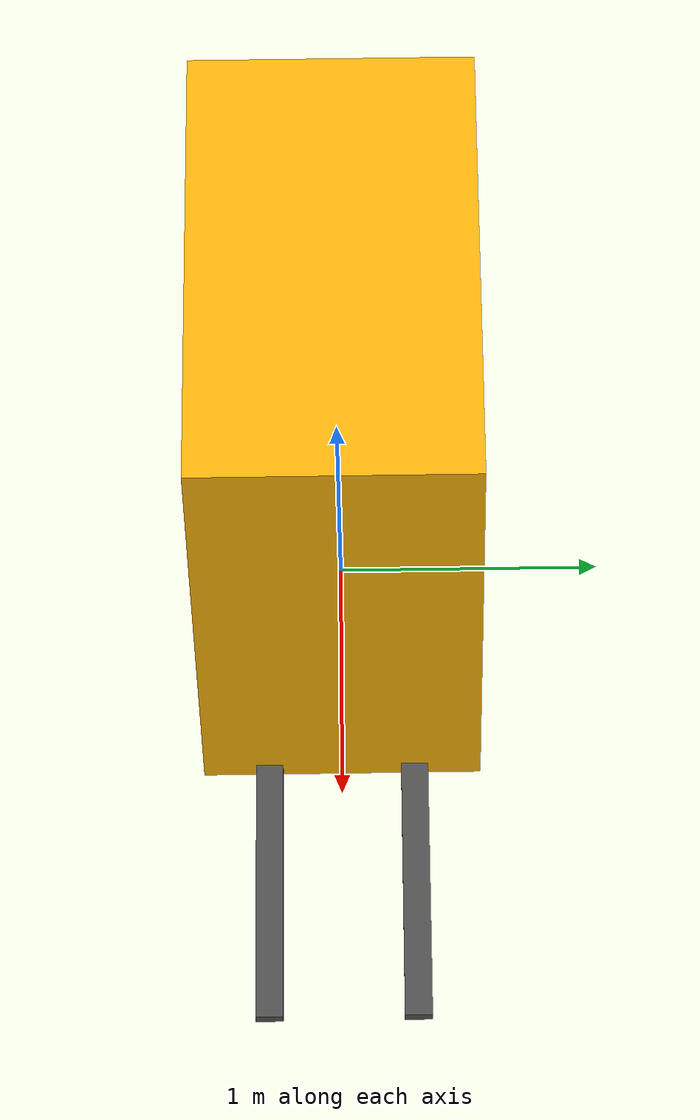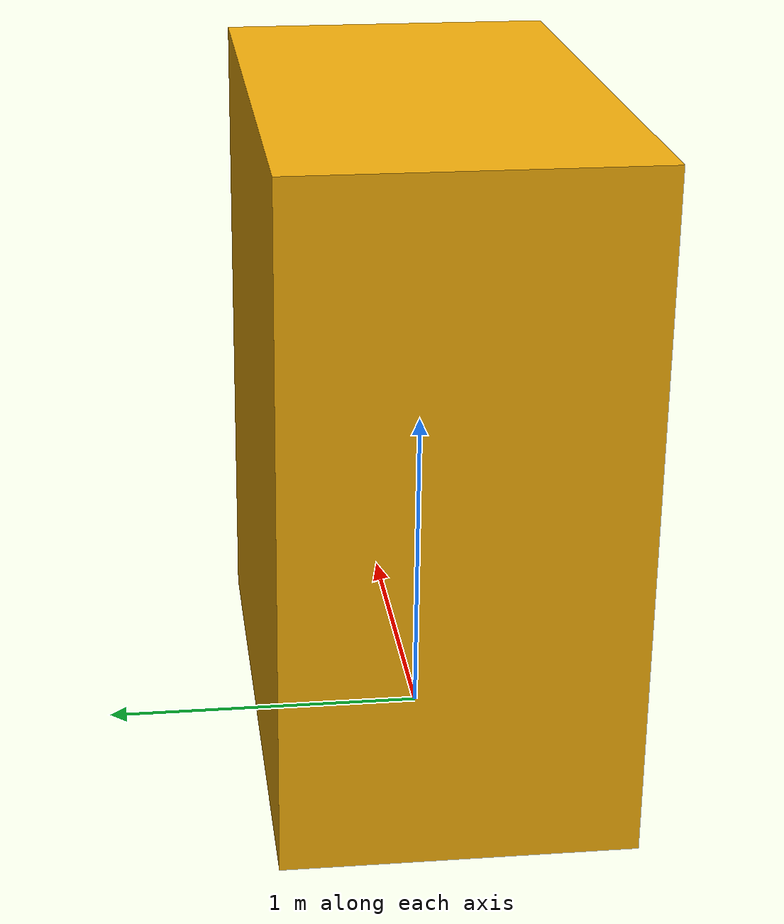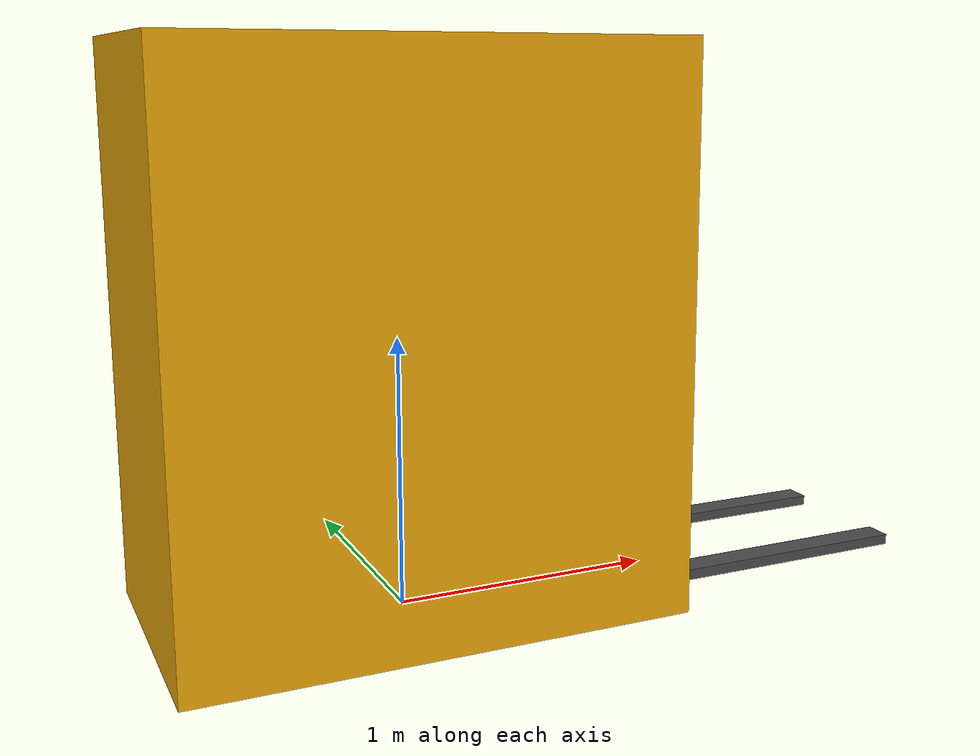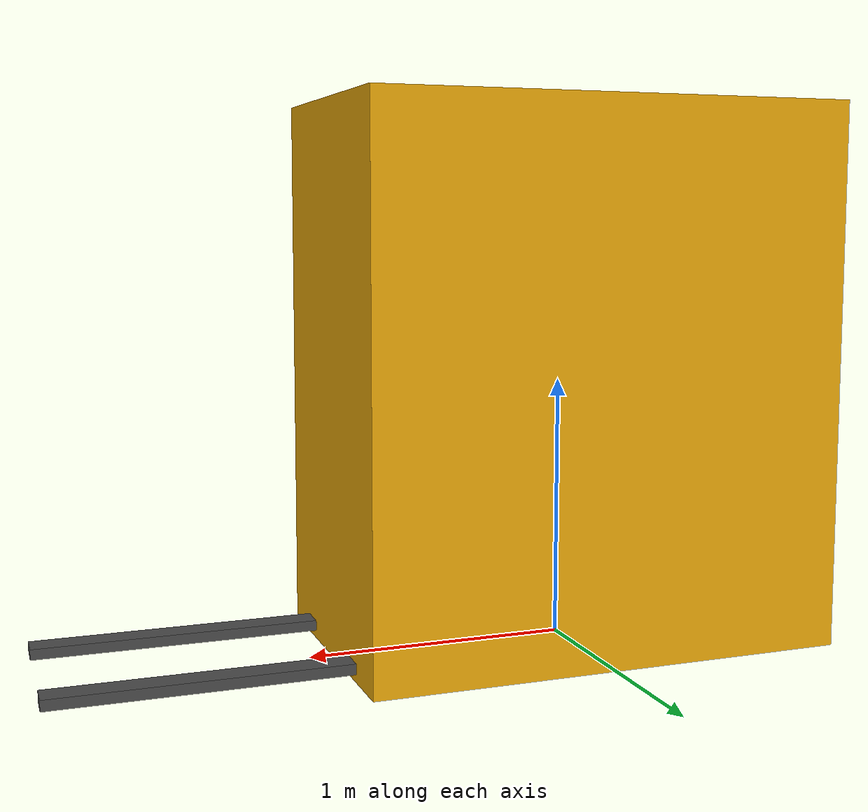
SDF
<?xml version="1.0"?>
<sdf version="1.10">
  <model name="forklift">
    <static>false</static>
    <self_collide>false</self_collide>
    <allow_auto_disable>false</allow_auto_disable>
    <canonical_link>base_link</canonical_link>

    <!-- Simplified body based on a compact 3-wheel electric warehouse truck. -->
    <link name="base_link">
      <gravity>true</gravity>
      <kinematic>false</kinematic>
      <inertial>
        <pose>0 0 1.025 0 0 0</pose>
        <mass>2500</mass>
        <inertia>
          <ixx>1105.20833333</ixx>
          <ixy>0</ixy>
          <ixz>0</ixz>
          <iyy>1573.20833333</iyy>
          <iyz>0</iyz>
          <izz>927.375</izz>
        </inertia>
      </inertial>

      <collision name="body_collision">
        <pose>0 0 1.025 0 0 0</pose>
        <geometry><box><size>1.83 1.05 2.05</size></box></geometry>
        <surface>
          <friction><ode><mu>0.9</mu><mu2>0.9</mu2></ode></friction>
          <bounce><restitution_coefficient>0</restitution_coefficient><threshold>100000</threshold></bounce>
          <contact><ode><kp>2000000</kp><kd>200</kd><max_vel>0.5</max_vel><min_depth>0.0005</min_depth></ode></contact>
        </surface>
      </collision>
      <visual name="body_visual">
        <pose>0 0 1.025 0 0 0</pose>
        <geometry><box><size>1.83 1.05 2.05</size></box></geometry>
        <material>
          <ambient>0.82 0.55 0.02 1</ambient>
          <diffuse>0.95 0.68 0.04 1</diffuse>
          <specular>0.08 0.08 0.08 1</specular>
        </material>
      </visual>
    </link>

    <!-- Initial fork bottom is 30 mm above the floor; top is 70 mm. -->
    <link name="left_fork_link">
      <pose>1.4485 0.275 0.05 0 0 0</pose>
      <gravity>true</gravity>
      <kinematic>false</kinematic>
      <inertial>
        <mass>35</mass>
        <inertia>
          <ixx>0.0350116667</ixx>
          <ixy>0</ixy>
          <ixz>0</ixz>
          <iyy>3.3252595833</iyy>
          <iyz>0</iyz>
          <izz>3.3509379167</izz>
        </inertia>
      </inertial>
      <collision name="left_fork_collision">
        <geometry><box><size>1.067 0.102 0.04</size></box></geometry>
        <surface>
          <friction><ode><mu>0.85</mu><mu2>0.85</mu2></ode></friction>
          <bounce><restitution_coefficient>0</restitution_coefficient><threshold>100000</threshold></bounce>
          <contact><ode><kp>2000000</kp><kd>200</kd><max_vel>0.5</max_vel><min_depth>0.0002</min_depth></ode></contact>
        </surface>
      </collision>
      <visual name="left_fork_visual">
        <geometry><box><size>1.067 0.102 0.04</size></box></geometry>
        <material>
          <ambient>0.18 0.18 0.18 1</ambient>
          <diffuse>0.30 0.30 0.30 1</diffuse>
          <specular>0.20 0.20 0.20 1</specular>
        </material>
      </visual>
    </link>

    <link name="right_fork_link">
      <pose>1.4485 -0.275 0.05 0 0 0</pose>
      <gravity>true</gravity>
      <kinematic>false</kinematic>
      <inertial>
        <mass>35</mass>
        <inertia>
          <ixx>0.0350116667</ixx>
          <ixy>0</ixy>
          <ixz>0</ixz>
          <iyy>3.3252595833</iyy>
          <iyz>0</iyz>
          <izz>3.3509379167</izz>
        </inertia>
      </inertial>
      <collision name="right_fork_collision">
        <geometry><box><size>1.067 0.102 0.04</size></box></geometry>
        <surface>
          <friction><ode><mu>0.85</mu><mu2>0.85</mu2></ode></friction>
          <bounce><restitution_coefficient>0</restitution_coefficient><threshold>100000</threshold></bounce>
          <contact><ode><kp>2000000</kp><kd>200</kd><max_vel>0.5</max_vel><min_depth>0.0002</min_depth></ode></contact>
        </surface>
      </collision>
      <visual name="right_fork_visual">
        <geometry><box><size>1.067 0.102 0.04</size></box></geometry>
        <material>
          <ambient>0.18 0.18 0.18 1</ambient>
          <diffuse>0.30 0.30 0.30 1</diffuse>
          <specular>0.20 0.20 0.20 1</specular>
        </material>
      </visual>
    </link>

    <joint name="left_fork_joint" type="prismatic">
      <parent>base_link</parent>
      <child>left_fork_link</child>
      <axis>
        <xyz>0 0 1</xyz>
        <limit><lower>0</lower><upper>1.98</upper><effort>250000</effort><velocity>0.15</velocity></limit>
        <dynamics><damping>50</damping><friction>5</friction></dynamics>
      </axis>
    </joint>

    <joint name="right_fork_joint" type="prismatic">
      <parent>base_link</parent>
      <child>right_fork_link</child>
      <axis>
        <xyz>0 0 1</xyz>
        <limit><lower>0</lower><upper>1.98</upper><effort>250000</effort><velocity>0.15</velocity></limit>
        <dynamics><damping>50</damping><friction>5</friction></dynamics>
      </axis>
    </joint>

    <!-- Direct planar model velocity. The GUI teleop plugin performs the ramp. -->
    <plugin filename="gz-sim-velocity-control-system" name="gz::sim::systems::VelocityControl">
      <topic>/forklift/cmd_vel</topic>
    </plugin>

    <!-- One direct velocity controller per fork joint; both receive identical commands. -->
    <plugin filename="gz-sim-joint-controller-system" name="gz::sim::systems::JointController">
      <joint_name>left_fork_joint</joint_name>
      <topic>/forklift/left_fork/cmd_vel</topic>
      <use_force_commands>false</use_force_commands>
    </plugin>

    <plugin filename="gz-sim-joint-controller-system" name="gz::sim::systems::JointController">
      <joint_name>right_fork_joint</joint_name>
      <topic>/forklift/right_fork/cmd_vel</topic>
      <use_force_commands>false</use_force_commands>
    </plugin>
  </model>
</sdf>
